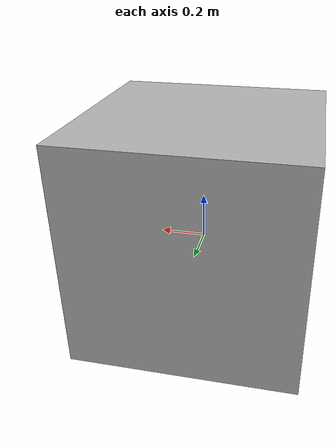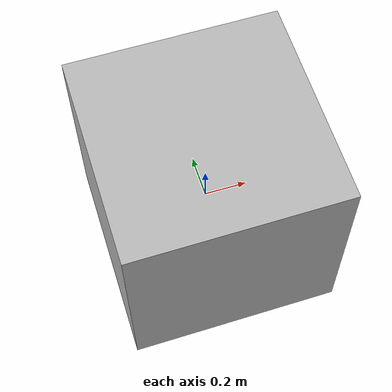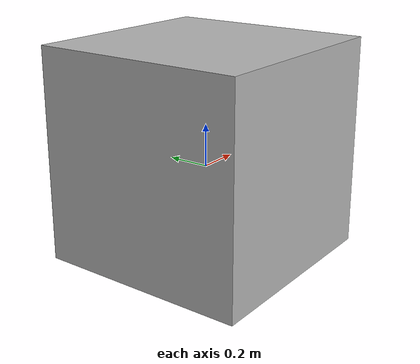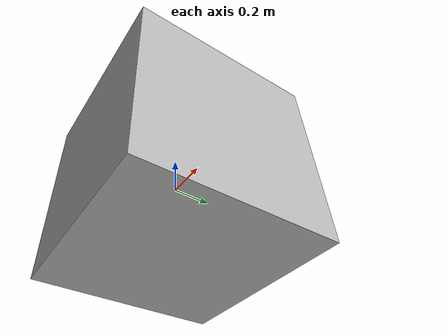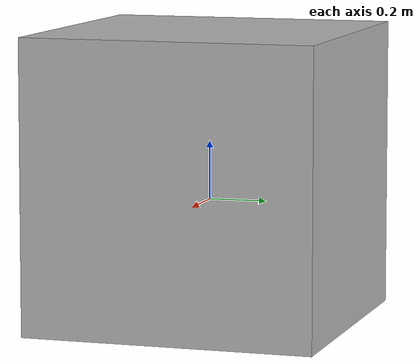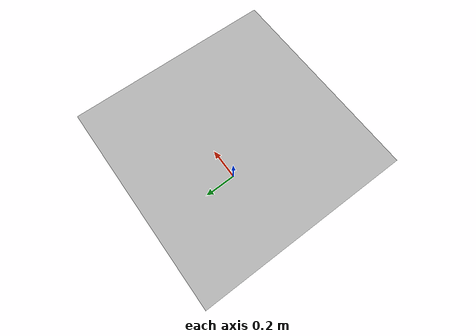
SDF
<sdf version='1.6'>
  <model name='soccer_robot'>
    <link name='chassis'>
      <pose frame=''>0 0 0 0 -0 0</pose>
      <inertial>
        <pose frame=''>0 0 0.045 0 -0 0</pose>
        <mass>0.8</mass>
        <inertia>
          <ixx>0.003305</ixx>
          <ixy>0</ixy>
          <ixz>0</ixz>
          <iyy>0.003305</iyy>
          <iyz>0</iyz>
          <izz>0.00361</izz>
        </inertia>
      </inertial>
      <collision name='chassis_fixed_joint_lump__collision_collision'>
        <pose frame=''>0 0 0.0825 0 -0 0</pose>
        <geometry>
          <box>
            <size>1 1 1</size>
          </box>
        </geometry>
      </collision>
      <visual name='chassis_fixed_joint_lump__visual_visual'>
        <pose frame=''>0 0 0.0825 0 -0 0</pose>
        <geometry>
          <box>
            <size>1 1 1</size>
          </box>
        </geometry>
      </visual>
      <gravity>1</gravity>
      <velocity_decay/>
    </link>
  </model>
</sdf>
